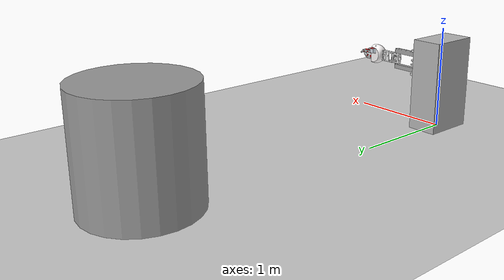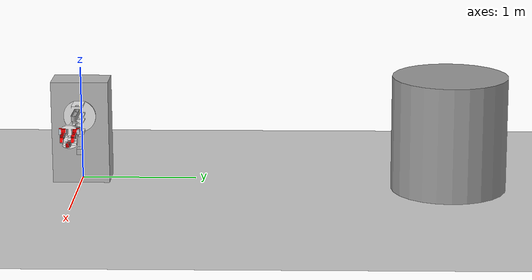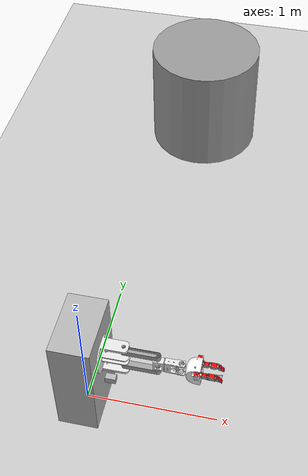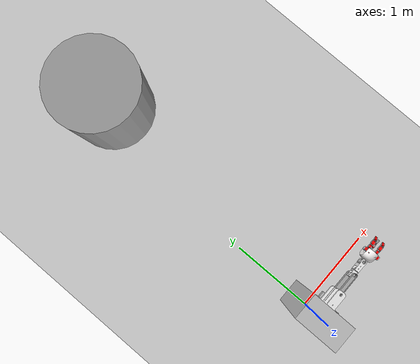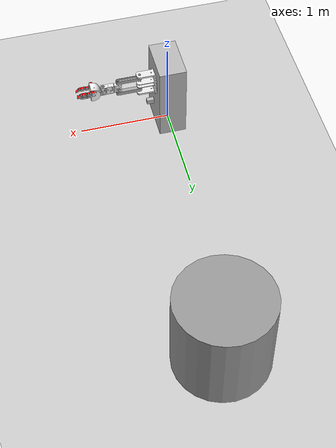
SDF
<sdf version="1.7">
 <world name="default">
  <light name="sun" type="directional">
   <pose>0 0 10 0 -0 0</pose>
   <diffuse>0.8 0.8 0.8 1</diffuse>
   <specular>0.2 0.2 0.2 1</specular>
   <attenuation>
    <range>1000</range>
    <constant>0.9</constant>
    <linear>0.01</linear>
    <quadratic>0.001</quadratic>
   </attenuation>
   <direction>-0.5 0.1 -0.9</direction>
   <spot><inner_angle>0</inner_angle><outer_angle>0</outer_angle><falloff>0</falloff></spot>
  </light>
  <model name="ground_plane">
   <static>1</static>
   <link name="link">
    <collision name="collision">
     <geometry><plane><normal>0 0 1</normal><size>100 100</size></plane></geometry>
     <surface>
      <contact><collide_bitmask>65535</collide_bitmask></contact>
      <friction><ode><mu>100</mu><mu2>50</mu2></ode></friction>
     </surface>
    </collision>
    <visual name="visual">
     <cast_shadows>0</cast_shadows>
     <geometry><plane><normal>0 0 1</normal><size>100 100</size></plane></geometry>
     <material>
      <script><uri>file://media/materials/scripts/gazebo.material</uri><name>Gazebo/Grey</name></script>
     </material>
    </visual>
   </link>
  </model>
  <gravity>0 0 -9.8</gravity>
  <magnetic_field>6e-06 2.3e-05 -4.2e-05</magnetic_field>
  <atmosphere type="adiabatic"/>
  <physics type="ode">
   <max_step_size>0.001</max_step_size>
   <real_time_factor>1</real_time_factor>
   <real_time_update_rate>1000</real_time_update_rate>
  </physics>
  <scene><ambient>0.4 0.4 0.4 1</ambient><background>0.7 0.7 0.7 1</background><shadows>1</shadows></scene>
  <spherical_coordinates>
   <surface_model>EARTH_WGS84</surface_model>
   <latitude_deg>0</latitude_deg>
   <longitude_deg>0</longitude_deg>
   <elevation>0</elevation>
   <heading_deg>0</heading_deg>
  </spherical_coordinates>
  <model name="robot">
   <joint name="base" type="fixed">
    <pose relative_to="__model__">0 0 0 0 -0 0</pose>
    <parent>world</parent>
    <child>arm1_base_fixed</child>
   </joint>
   <link name="arm1_base_fixed">
    <pose relative_to="base">0 0 0 0 -0 0</pose>
    <inertial>
     <pose>0.1 0 0.15 0 -0 0</pose>
     <mass>1</mass>
     <inertia><ixx>0.8225</ixx><ixy>0</ixy><ixz>-0.015</ixz><iyy>0.8325</iyy><iyz>0</iyz><izz>0.41</izz></inertia>
    </inertial>
    <collision name="arm1_base_fixed_collision">
     <pose>0 0 0.4 0 -0 0</pose>
     <geometry><box><size>0.3 0.3 0.8</size></box></geometry>
     <surface><friction><ode><mu>0.2</mu><mu2>0.2</mu2></ode></friction></surface>
    </collision>
    <collision name="arm1_base_fixed_fixed_joint_lump__arm1_camera_link_collision_1">
     <pose>0.2 0 0.3 3.14159 -0 3.14159</pose>
     <geometry><box><size>0.08 0.05 0.05</size></box></geometry>
    </collision>
    <visual name="arm1_base_fixed_visual">
     <pose>0 0 0.4 0 -0 0</pose>
     <geometry><box><size>0.3 0.5 1</size></box></geometry>
    </visual>
    <visual name="arm1_base_fixed_fixed_joint_lump__arm1_camera_link_visual_1">
     <pose>0.2 0 0.3 3.14159 -0 3.14159</pose>
     <geometry><box><size>0.08 0.05 0.05</size></box></geometry>
    </visual>
    <sensor name="arm1_camera" type="depth">
     <update_rate>20</update_rate>
     <camera>
      <horizontal_fov>1.0472</horizontal_fov>
      <image><width>640</width><height>480</height><format>R8G8B8</format></image>
      <clip><near>0.05</near><far>3</far></clip>
     </camera>
     <plugin name="arm1_kinetic_camera_controller" filename="libgazebo_ros_openni_kinect.so">
      <baseline>0.2</baseline>
      <alwaysOn>1</alwaysOn>
      <updateRate>1.0</updateRate>
      <cameraName>arm1_camera_ir</cameraName>
      <imageTopicName>/arm1_camera/color/image_raw</imageTopicName>
      <cameraInfoTopicName>/arm1_camera/color/camera_info</cameraInfoTopicName>
      <depthImageTopicName>/arm1_camera/depth/image_raw</depthImageTopicName>
      <depthImageInfoTopicName>/arm1_camera/depth/camera_info</depthImageInfoTopicName>
      <pointCloudTopicName>/arm1_camera/depth/points</pointCloudTopicName>
      <frameName>arm1_camera_link</frameName>
      <pointCloudCutoff>0.5</pointCloudCutoff>
      <pointCloudCutoffMax>3.0</pointCloudCutoffMax>
      <distortionK1>0.00000001</distortionK1>
      <distortionK2>0.00000001</distortionK2>
      <distortionK3>0.00000001</distortionK3>
      <distortionT1>0.00000001</distortionT1>
      <distortionT2>0.00000001</distortionT2>
      <CxPrime>0</CxPrime>
      <Cx>0</Cx>
      <Cy>0</Cy>
      <focalLength>0</focalLength>
      <hackBaseline>0</hackBaseline>
      <robotNamespace>/</robotNamespace>
     </plugin>
     <pose>0.2 0 0.3 0 -0 0</pose>
    </sensor>
   </link>
   <joint name="arm1_base_fixed_base_joint" type="revolute">
    <pose relative_to="arm1_base_fixed">0.15 0 0.6 3.14159 1.57079 3.14159</pose>
    <parent>arm1_base_fixed</parent>
    <child>arm1_base</child>
    <axis>
     <xyz>0 0 1</xyz>
     <limit><lower>-3.14159</lower><upper>3.14159</upper><effort>1000</effort><velocity>0.5</velocity></limit>
     <dynamics>
      <damping>0.003</damping>
      <friction>0</friction>
      <spring_reference>0</spring_reference>
      <spring_stiffness>0</spring_stiffness>
     </dynamics>
    </axis>
   </joint>
   <link name="arm1_base">
    <pose relative_to="arm1_base_fixed_base_joint">0 0 0 0 -0 0</pose>
    <inertial>
     <mass>0.5</mass>
     <inertia><ixx>0.4</ixx><ixy>0</ixy><ixz>0</ixz><iyy>0.4</iyy><iyz>0</iyz><izz>0.2</izz></inertia>
    </inertial>
    <collision name="arm1_base_collision">
     <geometry><mesh><scale>1 1 1</scale><uri>/home/flora/arm/src/arm_urdf/meshes/Base.dae</uri></mesh></geometry>
     <surface><friction><ode><mu>0.2</mu><mu2>0.2</mu2></ode></friction></surface>
    </collision>
    <visual name="arm1_base_visual">
     <geometry><mesh><scale>1 1 1</scale><uri>/home/flora/arm/src/arm_urdf/meshes/Base.dae</uri></mesh></geometry>
    </visual>
   </link>
   <joint name="arm1_base_bridge_joint" type="revolute">
    <pose relative_to="arm1_base">0 0 0.165 0 -0 0</pose>
    <parent>arm1_base</parent>
    <child>arm1_bridge</child>
    <axis>
     <xyz>1 0 0</xyz>
     <limit><lower>-2.0944</lower><upper>2.0944</upper><effort>1000</effort><velocity>0.5</velocity></limit>
     <dynamics>
      <damping>0.003</damping>
      <friction>0</friction>
      <spring_reference>0</spring_reference>
      <spring_stiffness>0</spring_stiffness>
     </dynamics>
    </axis>
   </joint>
   <link name="arm1_bridge">
    <pose relative_to="arm1_base_bridge_joint">0 0 0 0 -0 0</pose>
    <inertial>
     <mass>1</mass>
     <inertia><ixx>0.8</ixx><ixy>0</ixy><ixz>0</ixz><iyy>0.8</iyy><iyz>0</iyz><izz>0.4</izz></inertia>
    </inertial>
    <collision name="arm1_bridge_collision">
     <pose>0.07 0 0.104 0 0 -1.5708</pose>
     <geometry>
      <mesh><scale>1 1 1</scale><uri>/home/flora/arm/src/arm_urdf/meshes/Bridge.dae</uri></mesh>
     </geometry>
     <surface><friction><ode><mu>0.2</mu><mu2>0.2</mu2></ode></friction></surface>
    </collision>
    <collision name="arm1_bridge2_collision_1">
     <pose>-0.07 0 0.104 0 -0 1.5708</pose>
     <geometry>
      <mesh><scale>1 1 1</scale><uri>/home/flora/arm/src/arm_urdf/meshes/Bridge.dae</uri></mesh>
     </geometry>
     <surface><friction><ode><mu>0.2</mu><mu2>0.2</mu2></ode></friction></surface>
    </collision>
    <visual name="arm1_bridge_visual">
     <pose>0.07 0 0.104 0 0 -1.5708</pose>
     <geometry>
      <mesh><scale>1 1 1</scale><uri>/home/flora/arm/src/arm_urdf/meshes/Bridge.dae</uri></mesh>
     </geometry>
    </visual>
    <visual name="arm1_bridge2_visual_1">
     <pose>-0.07 0 0.104 0 -0 1.5708</pose>
     <geometry>
      <mesh><scale>1 1 1</scale><uri>/home/flora/arm/src/arm_urdf/meshes/Bridge.dae</uri></mesh>
     </geometry>
    </visual>
   </link>
   <joint name="arm1_bridge_housing_joint" type="revolute">
    <pose relative_to="arm1_bridge">0 0 0.24875 0 -0 0</pose>
    <parent>arm1_bridge</parent>
    <child>arm1_housing</child>
    <axis>
     <xyz>1 0 0</xyz>
     <limit><lower>-2.87979</lower><upper>2.87979</upper><effort>1000</effort><velocity>0.5</velocity></limit>
     <dynamics>
      <damping>0.003</damping>
      <friction>0</friction>
      <spring_reference>0</spring_reference>
      <spring_stiffness>0</spring_stiffness>
     </dynamics>
    </axis>
   </joint>
   <link name="arm1_housing">
    <pose relative_to="arm1_bridge_housing_joint">0 0 0 0 -0 0</pose>
    <inertial>
     <mass>0.5</mass>
     <inertia><ixx>0.4</ixx><ixy>0</ixy><ixz>0</ixz><iyy>0.4</iyy><iyz>0</iyz><izz>0.2</izz></inertia>
    </inertial>
    <collision name="arm1_housing_collision">
     <geometry>
      <mesh><scale>1 1 1</scale><uri>/home/flora/arm/src/arm_urdf/meshes/Housing.dae</uri></mesh>
     </geometry>
     <surface><friction><ode><mu>0.2</mu><mu2>0.2</mu2></ode></friction></surface>
    </collision>
    <visual name="arm1_housing_visual">
     <geometry>
      <mesh><scale>1 1 1</scale><uri>/home/flora/arm/src/arm_urdf/meshes/Housing.dae</uri></mesh>
     </geometry>
    </visual>
   </link>
   <joint name="arm1_housing_wrist_link_joint" type="revolute">
    <pose relative_to="arm1_housing">0 0 0.045 0 -0 0</pose>
    <parent>arm1_housing</parent>
    <child>arm1_wrist_link</child>
    <axis>
     <xyz>0 0 1</xyz>
     <limit><lower>-3.14159</lower><upper>3.14159</upper><effort>1000</effort><velocity>0.5</velocity></limit>
     <dynamics>
      <damping>0.003</damping>
      <friction>0</friction>
      <spring_reference>0</spring_reference>
      <spring_stiffness>0</spring_stiffness>
     </dynamics>
    </axis>
   </joint>
   <link name="arm1_wrist_link">
    <pose relative_to="arm1_housing_wrist_link_joint">0 0 0 0 -0 0</pose>
    <inertial>
     <mass>0.5</mass>
     <inertia><ixx>0.4</ixx><ixy>0</ixy><ixz>0</ixz><iyy>0.4</iyy><iyz>0</iyz><izz>0.2</izz></inertia>
    </inertial>
    <collision name="arm1_wrist_link_collision">
     <geometry>
      <mesh><scale>1 1 1</scale><uri>/home/flora/arm/src/arm_urdf/meshes/Wrist Link.dae</uri></mesh>
     </geometry>
     <surface><friction><ode><mu>0.2</mu><mu2>0.2</mu2></ode></friction></surface>
    </collision>
    <visual name="arm1_wrist_link_visual">
     <geometry>
      <mesh><scale>1 1 1</scale><uri>/home/flora/arm/src/arm_urdf/meshes/Wrist Link.dae</uri></mesh>
     </geometry>
    </visual>
   </link>
   <joint name="arm1_wrist_link_wrist_cuff_joint" type="revolute">
    <pose relative_to="arm1_wrist_link">0 0 0.122 0 -0 0</pose>
    <parent>arm1_wrist_link</parent>
    <child>arm1_wrist_cuff</child>
    <axis>
     <xyz>1 0 0</xyz>
     <limit><lower>-1.48353</lower><upper>1.48353</upper><effort>1000</effort><velocity>0.5</velocity></limit>
     <dynamics>
      <damping>0.003</damping>
      <friction>0</friction>
      <spring_reference>0</spring_reference>
      <spring_stiffness>0</spring_stiffness>
     </dynamics>
    </axis>
   </joint>
   <link name="arm1_wrist_cuff">
    <pose relative_to="arm1_wrist_link_wrist_cuff_joint">0 0 0 0 -0 0</pose>
    <inertial>
     <pose>0 0 0.015 0 -0 0</pose>
     <mass>1</mass>
     <inertia><ixx>0.800225</ixx><ixy>0</ixy><ixz>0</ixz><iyy>0.800225</iyy><iyz>0</iyz><izz>0.4</izz></inertia>
    </inertial>
    <collision name="arm1_wrist_cuff_collision">
     <pose>0 0.027 -0.0255 3.14159 -0 3.14159</pose>
     <geometry>
      <mesh><scale>1 1 1</scale><uri>/home/flora/arm/src/arm_urdf/meshes/Wrist Cuff.dae</uri></mesh>
     </geometry>
     <surface><friction><ode><mu>0.2</mu><mu2>0.2</mu2></ode></friction></surface>
    </collision>
    <collision name="arm1_wrist_cuff_fixed_joint_lump__arm1_palm_collision_1">
     <pose>0 0 0.14 0 -0 0</pose>
     <geometry><mesh><scale>1 1 1</scale><uri>/home/flora/arm/src/arm_urdf/meshes/Palm.dae</uri></mesh></geometry>
    </collision>
    <visual name="arm1_wrist_cuff_visual">
     <pose>0 0.027 -0.0255 3.14159 -0 3.14159</pose>
     <geometry>
      <mesh><scale>1 1 1</scale><uri>/home/flora/arm/src/arm_urdf/meshes/Wrist Cuff.dae</uri></mesh>
     </geometry>
    </visual>
    <visual name="arm1_wrist_cuff_fixed_joint_lump__arm1_palm_visual_1">
     <pose>0 0 0.14 0 -0 0</pose>
     <geometry><mesh><scale>1 1 1</scale><uri>/home/flora/arm/src/arm_urdf/meshes/Palm.dae</uri></mesh></geometry>
    </visual>
   </link>
   <joint name="arm1_palm_finger_thumb_joint" type="revolute">
    <pose relative_to="arm1_wrist_cuff">0.062 0.007 0.133 0 -0 3.14159</pose>
    <parent>arm1_wrist_cuff</parent>
    <child>arm1_finger_thumb</child>
    <axis>
     <xyz>0 1 0</xyz>
     <limit><lower>-0.349066</lower><upper>0.174533</upper><effort>1000</effort><velocity>0.5</velocity></limit>
     <dynamics>
      <damping>0.003</damping>
      <friction>0</friction>
      <spring_reference>0</spring_reference>
      <spring_stiffness>0</spring_stiffness>
     </dynamics>
    </axis>
   </joint>
   <link name="arm1_finger_thumb">
    <pose relative_to="arm1_palm_finger_thumb_joint">0 0 0 0 -0 0</pose>
    <inertial>
     <mass>0.5</mass>
     <inertia><ixx>0.4</ixx><ixy>0</ixy><ixz>0</ixz><iyy>0.4</iyy><iyz>0</iyz><izz>0.2</izz></inertia>
    </inertial>
    <collision name="arm1_finger_thumb_collision">
     <pose>-0.002 0 0.02 1.57079 1.57079 3.14159</pose>
     <geometry>
      <mesh><scale>1 1 1</scale><uri>/home/flora/arm/src/arm_urdf/meshes/Finger Assembly.dae</uri></mesh>
     </geometry>
    </collision>
    <visual name="arm1_finger_thumb_visual">
     <pose>-0.002 0 0.02 1.57079 1.57079 3.14159</pose>
     <geometry>
      <mesh><scale>1 1 1</scale><uri>/home/flora/arm/src/arm_urdf/meshes/Finger Assembly.dae</uri></mesh>
     </geometry>
    </visual>
   </link>
   <joint name="arm1_palm_hub_left_joint" type="revolute">
    <pose relative_to="arm1_wrist_cuff">-0.065 -0.038 0.098 0 -0 0</pose>
    <parent>arm1_wrist_cuff</parent>
    <child>arm1_hub_left</child>
    <axis>
     <xyz>1 0 0</xyz>
     <limit><lower>0</lower><upper>0.610865</upper><effort>1000</effort><velocity>0.5</velocity></limit>
     <dynamics>
      <damping>0.003</damping>
      <friction>0</friction>
      <spring_reference>0</spring_reference>
      <spring_stiffness>0</spring_stiffness>
     </dynamics>
    </axis>
   </joint>
   <link name="arm1_hub_left">
    <pose relative_to="arm1_palm_hub_left_joint">0 0 0 0 -0 0</pose>
    <inertial>
     <mass>0.5</mass>
     <inertia><ixx>0.4</ixx><ixy>0</ixy><ixz>0</ixz><iyy>0.4</iyy><iyz>0</iyz><izz>0.2</izz></inertia>
    </inertial>
    <collision name="arm1_hub_left_collision">
     <pose>0 0.02 0.002 0 -0 1.5708</pose>
     <geometry>
      <mesh><scale>1 1 1</scale><uri>/home/flora/arm/src/arm_urdf/meshes/Hub Left.dae</uri></mesh>
     </geometry>
    </collision>
    <visual name="arm1_hub_left_visual">
     <pose>0 0.02 0.002 0 -0 1.5708</pose>
     <geometry>
      <mesh><scale>1 1 1</scale><uri>/home/flora/arm/src/arm_urdf/meshes/Hub Left.dae</uri></mesh>
     </geometry>
    </visual>
   </link>
   <joint name="arm1_hub_left_finger_left_joint" type="revolute">
    <pose relative_to="arm1_hub_left">0.033 -0.0145 0.043 0 -0 0</pose>
    <parent>arm1_hub_left</parent>
    <child>arm1_finger_left</child>
    <axis>
     <xyz>0 1 0</xyz>
     <limit><lower>-1.39626</lower><upper>0.261799</upper><effort>1000</effort><velocity>0.5</velocity></limit>
     <dynamics>
      <damping>0.003</damping>
      <friction>0</friction>
      <spring_reference>0</spring_reference>
      <spring_stiffness>0</spring_stiffness>
     </dynamics>
    </axis>
   </joint>
   <link name="arm1_finger_left">
    <pose relative_to="arm1_hub_left_finger_left_joint">0 0 0 0 -0 0</pose>
    <inertial>
     <mass>0.5</mass>
     <inertia><ixx>0.4</ixx><ixy>0</ixy><ixz>0</ixz><iyy>0.4</iyy><iyz>0</iyz><izz>0.2</izz></inertia>
    </inertial>
    <collision name="arm1_finger_left_collision">
     <pose>-0.002 0 0.02 1.57079 1.57079 3.14159</pose>
     <geometry>
      <mesh><scale>1 1 1</scale><uri>/home/flora/arm/src/arm_urdf/meshes/Finger Assembly.dae</uri></mesh>
     </geometry>
    </collision>
    <visual name="arm1_finger_left_visual">
     <pose>-0.002 0 0.02 1.57079 1.57079 3.14159</pose>
     <geometry>
      <mesh><scale>1 1 1</scale><uri>/home/flora/arm/src/arm_urdf/meshes/Finger Assembly.dae</uri></mesh>
     </geometry>
    </visual>
   </link>
   <joint name="arm1_palm_hub_right_joint" type="revolute">
    <pose relative_to="arm1_wrist_cuff">-0.065 0.038 0.098 0 -0 0</pose>
    <parent>arm1_wrist_cuff</parent>
    <child>arm1_hub_right</child>
    <axis>
     <xyz>1 0 0</xyz>
     <limit><lower>-0.610865</lower><upper>0</upper><effort>1000</effort><velocity>0.5</velocity></limit>
     <dynamics>
      <damping>0.003</damping>
      <friction>0</friction>
      <spring_reference>0</spring_reference>
      <spring_stiffness>0</spring_stiffness>
     </dynamics>
    </axis>
   </joint>
   <link name="arm1_hub_right">
    <pose relative_to="arm1_palm_hub_right_joint">0 0 0 0 -0 0</pose>
    <inertial>
     <mass>0.5</mass>
     <inertia><ixx>0.4</ixx><ixy>0</ixy><ixz>0</ixz><iyy>0.4</iyy><iyz>0</iyz><izz>0.2</izz></inertia>
    </inertial>
    <collision name="arm1_hub_right_collision">
     <pose>0 0.02 0.002 0 -0 1.5708</pose>
     <geometry>
      <mesh><scale>1 1 1</scale><uri>/home/flora/arm/src/arm_urdf/meshes/Hub Right.dae</uri></mesh>
     </geometry>
    </collision>
    <visual name="arm1_hub_right_visual">
     <pose>0 0.02 0.002 0 -0 1.5708</pose>
     <geometry>
      <mesh><scale>1 1 1</scale><uri>/home/flora/arm/src/arm_urdf/meshes/Hub Right.dae</uri></mesh>
     </geometry>
    </visual>
   </link>
   <joint name="arm1_hub_right_finger_right_joint" type="revolute">
    <pose relative_to="arm1_hub_right">0.033 0.0025 0.043 0 -0 0</pose>
    <parent>arm1_hub_right</parent>
    <child>arm1_finger_right</child>
    <axis>
     <xyz>0 1 0</xyz>
     <limit><lower>-1.39626</lower><upper>0.261799</upper><effort>1000</effort><velocity>0.5</velocity></limit>
     <dynamics>
      <damping>0.003</damping>
      <friction>0</friction>
      <spring_reference>0</spring_reference>
      <spring_stiffness>0</spring_stiffness>
     </dynamics>
    </axis>
   </joint>
   <link name="arm1_finger_right">
    <pose relative_to="arm1_hub_right_finger_right_joint">0 0 0 0 -0 0</pose>
    <inertial>
     <mass>0.5</mass>
     <inertia><ixx>0.4</ixx><ixy>0</ixy><ixz>0</ixz><iyy>0.4</iyy><iyz>0</iyz><izz>0.2</izz></inertia>
    </inertial>
    <collision name="arm1_finger_right_collision">
     <pose>-0.002 0 0.02 1.57079 1.57079 3.14159</pose>
     <geometry>
      <mesh><scale>1 1 1</scale><uri>/home/flora/arm/src/arm_urdf/meshes/Finger Assembly.dae</uri></mesh>
     </geometry>
    </collision>
    <visual name="arm1_finger_right_visual">
     <pose>-0.002 0 0.02 1.57079 1.57079 3.14159</pose>
     <geometry>
      <mesh><scale>1 1 1</scale><uri>/home/flora/arm/src/arm_urdf/meshes/Finger Assembly.dae</uri></mesh>
     </geometry>
    </visual>
   </link>
   <static>0</static>
   <plugin name="gazebo_ros_control" filename="libgazebo_ros_control.so">
    <robotNamespace>/</robotNamespace>
   </plugin>
  </model>
  <light name="user_point_light_0" type="point">
   <pose>-1.19428 4.90917 1 0 -0 0</pose>
   <diffuse>0.5 0.5 0.5 1</diffuse>
   <specular>0.1 0.1 0.1 1</specular>
   <attenuation>
    <range>20</range>
    <constant>0.5</constant>
    <linear>0.01</linear>
    <quadratic>0.001</quadratic>
   </attenuation>
   <cast_shadows>0</cast_shadows>
   <direction>0 0 -1</direction>
  </light>
  <model name="unit_cylinder">
   <pose>0.288653 3.2198 0.499997 3e-06 4e-06 -0</pose>
   <link name="link">
    <inertial>
     <mass>1</mass>
     <inertia><ixx>0.145833</ixx><ixy>0</ixy><ixz>0</ixz><iyy>0.145833</iyy><iyz>0</iyz><izz>0.125</izz></inertia>
    </inertial>
    <collision name="collision">
     <geometry><cylinder><radius>0.5</radius><length>1</length></cylinder></geometry>
    </collision>
    <visual name="visual">
     <geometry><cylinder><radius>0.5</radius><length>1</length></cylinder></geometry>
     <material>
      <script><name>Gazebo/Grey</name><uri>file://media/materials/scripts/gazebo.material</uri></script>
     </material>
    </visual>
   </link>
  </model>
 </world>
</sdf>
